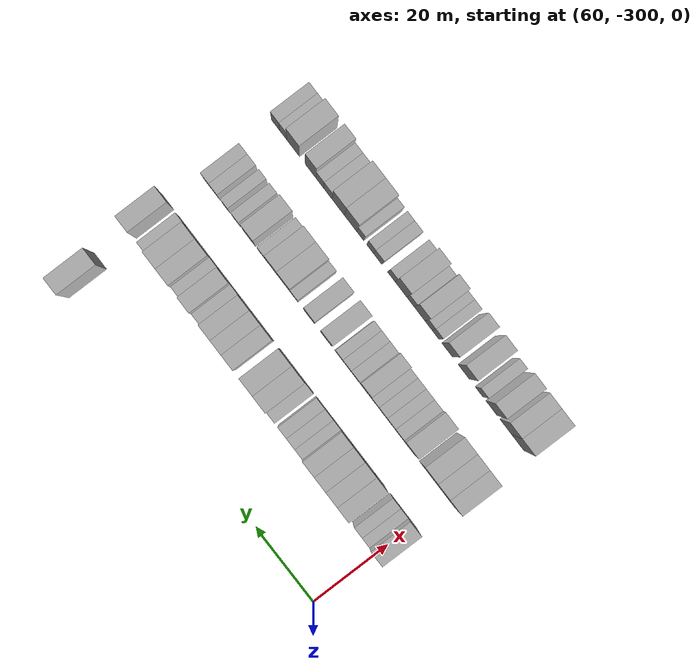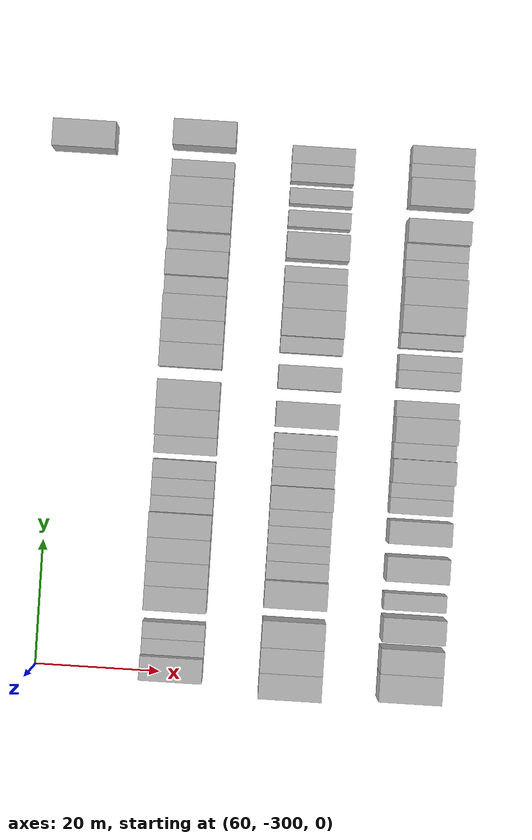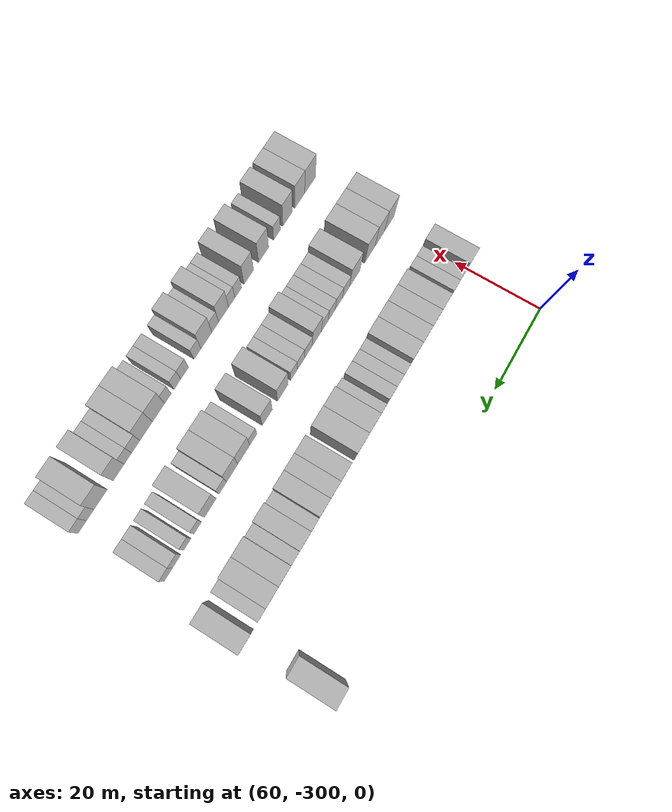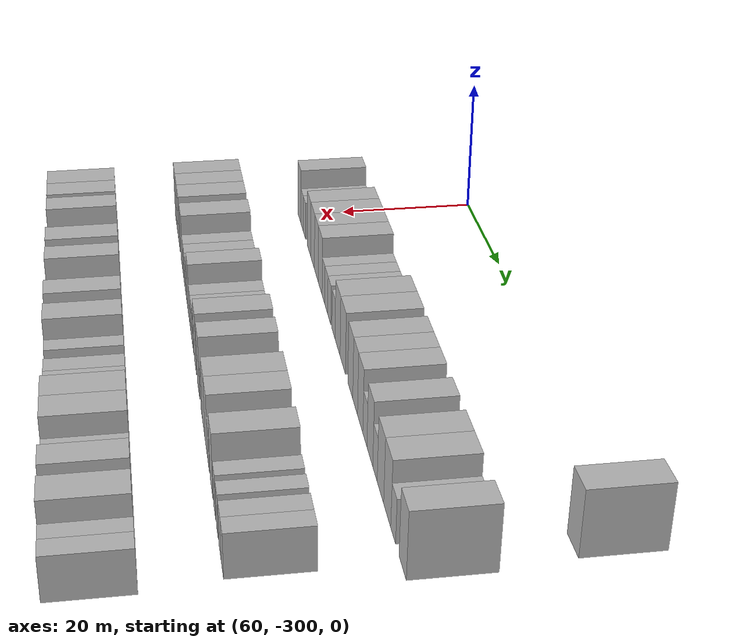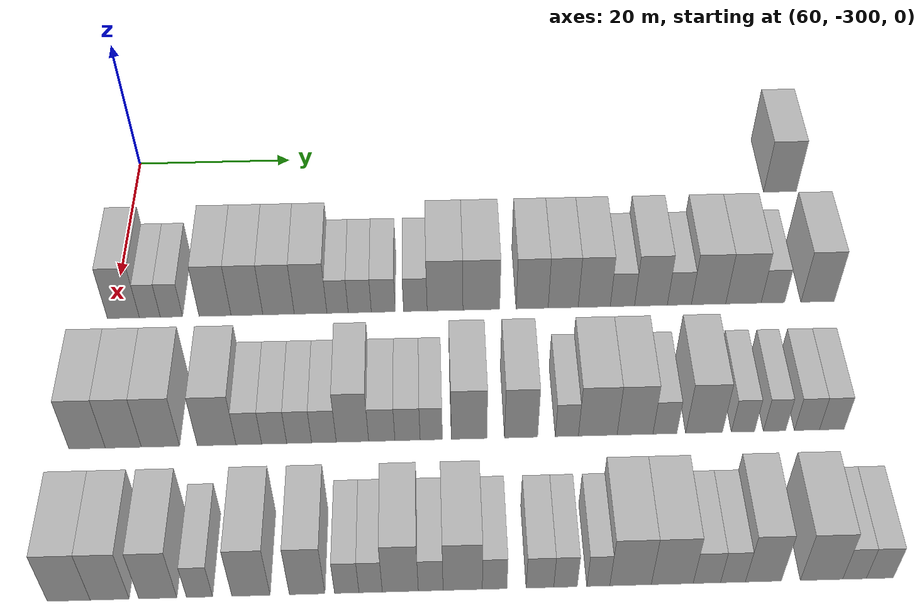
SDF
<sdf version="1.6">
 <world name="default">
  <model name="building_385">
   <static>1</static>
   <pose>63.0000 -215.2289 0 0.000000 0.000000 0.000000</pose>
   <link name="link">
    <pose>0 0 4.50 0 0 0</pose>
    <collision name="collision"><geometry><box><size>10.0000 4.3317 9.0000</size></box></geometry></collision>
    <visual name="visual">
     <cast_shadows>0</cast_shadows>
     <geometry><box><size>10.0000 4.3317 9.0000</size></box></geometry>
     <material>
      <script>
       <uri>model://HANNAS_wall/materials/scripts</uri>
       <uri>model://HANNAS_wall/materials/textures</uri>
       <name>vrc/HANNAS_wall</name>
      </script>
     </material>
    </visual>
   </link>
  </model>
  <model name="building_533">
   <static>1</static>
   <pose>82.0000 -298.7210 0 0.000000 0.000000 0.000000</pose>
   <link name="link">
    <pose>0 0 4.50 0 0 0</pose>
    <collision name="collision"><geometry><box><size>10.0000 3.8678 9.0000</size></box></geometry></collision>
    <visual name="visual">
     <cast_shadows>0</cast_shadows>
     <geometry><box><size>10.0000 3.8678 9.0000</size></box></geometry>
     <material>
      <script>
       <uri>model://HANNAS_wall/materials/scripts</uri>
       <uri>model://HANNAS_wall/materials/textures</uri>
       <name>vrc/HANNAS_wall</name>
      </script>
     </material>
    </visual>
   </link>
  </model>
  <model name="building_534">
   <static>1</static>
   <pose>82.0000 -295.5217 0 0.000000 0.000000 0.000000</pose>
   <link name="link">
    <pose>0 0 3.00 0 0 0</pose>
    <collision name="collision"><geometry><box><size>10.0000 2.5306 6.0000</size></box></geometry></collision>
    <visual name="visual">
     <cast_shadows>0</cast_shadows>
     <geometry><box><size>10.0000 2.5306 6.0000</size></box></geometry>
     <material>
      <script>
       <uri>model://HANNAS_wall/materials/scripts</uri>
       <uri>model://HANNAS_wall/materials/textures</uri>
       <name>vrc/HANNAS_wall</name>
      </script>
     </material>
    </visual>
   </link>
  </model>
  <model name="building_535">
   <static>1</static>
   <pose>82.0000 -292.9117 0 0.000000 0.000000 0.000000</pose>
   <link name="link">
    <pose>0 0 3.00 0 0 0</pose>
    <collision name="collision"><geometry><box><size>10.0000 2.6894 6.0000</size></box></geometry></collision>
    <visual name="visual">
     <cast_shadows>0</cast_shadows>
     <geometry><box><size>10.0000 2.6894 6.0000</size></box></geometry>
     <material>
      <script>
       <uri>model://HANNAS_wall/materials/scripts</uri>
       <uri>model://HANNAS_wall/materials/textures</uri>
       <name>vrc/HANNAS_wall</name>
      </script>
     </material>
    </visual>
   </link>
  </model>
  <model name="building_536">
   <static>1</static>
   <pose>82.0000 -287.6292 0 0.000000 0.000000 0.000000</pose>
   <link name="link">
    <pose>0 0 4.50 0 0 0</pose>
    <collision name="collision"><geometry><box><size>10.0000 3.8757 9.0000</size></box></geometry></collision>
    <visual name="visual">
     <cast_shadows>0</cast_shadows>
     <geometry><box><size>10.0000 3.8757 9.0000</size></box></geometry>
     <material>
      <script>
       <uri>model://HANNAS_wall/materials/scripts</uri>
       <uri>model://HANNAS_wall/materials/textures</uri>
       <name>vrc/HANNAS_wall</name>
      </script>
     </material>
    </visual>
   </link>
  </model>
  <model name="building_537">
   <static>1</static>
   <pose>82.0000 -283.7638 0 0.000000 0.000000 0.000000</pose>
   <link name="link">
    <pose>0 0 4.50 0 0 0</pose>
    <collision name="collision"><geometry><box><size>10.0000 3.8550 9.0000</size></box></geometry></collision>
    <visual name="visual">
     <cast_shadows>0</cast_shadows>
     <geometry><box><size>10.0000 3.8550 9.0000</size></box></geometry>
     <material>
      <script>
       <uri>model://HANNAS_wall/materials/scripts</uri>
       <uri>model://HANNAS_wall/materials/textures</uri>
       <name>vrc/HANNAS_wall</name>
      </script>
     </material>
    </visual>
   </link>
  </model>
  <model name="building_538">
   <static>1</static>
   <pose>82.0000 -279.9281 0 0.000000 0.000000 0.000000</pose>
   <link name="link">
    <pose>0 0 4.50 0 0 0</pose>
    <collision name="collision"><geometry><box><size>10.0000 3.8164 9.0000</size></box></geometry></collision>
    <visual name="visual">
     <cast_shadows>0</cast_shadows>
     <geometry><box><size>10.0000 3.8164 9.0000</size></box></geometry>
     <material>
      <script>
       <uri>model://HANNAS_wall/materials/scripts</uri>
       <uri>model://HANNAS_wall/materials/textures</uri>
       <name>vrc/HANNAS_wall</name>
      </script>
     </material>
    </visual>
   </link>
  </model>
  <model name="building_539">
   <static>1</static>
   <pose>82.0000 -276.0385 0 0.000000 0.000000 0.000000</pose>
   <link name="link">
    <pose>0 0 4.50 0 0 0</pose>
    <collision name="collision"><geometry><box><size>10.0000 3.9629 9.0000</size></box></geometry></collision>
    <visual name="visual">
     <cast_shadows>0</cast_shadows>
     <geometry><box><size>10.0000 3.9629 9.0000</size></box></geometry>
     <material>
      <script>
       <uri>model://HANNAS_wall/materials/scripts</uri>
       <uri>model://HANNAS_wall/materials/textures</uri>
       <name>vrc/HANNAS_wall</name>
      </script>
     </material>
    </visual>
   </link>
  </model>
  <model name="building_540">
   <static>1</static>
   <pose>82.0000 -272.7650 0 0.000000 0.000000 0.000000</pose>
   <link name="link">
    <pose>0 0 3.00 0 0 0</pose>
    <collision name="collision"><geometry><box><size>10.0000 2.5842 6.0000</size></box></geometry></collision>
    <visual name="visual">
     <cast_shadows>0</cast_shadows>
     <geometry><box><size>10.0000 2.5842 6.0000</size></box></geometry>
     <material>
      <script>
       <uri>model://HANNAS_wall/materials/scripts</uri>
       <uri>model://HANNAS_wall/materials/textures</uri>
       <name>vrc/HANNAS_wall</name>
      </script>
     </material>
    </visual>
   </link>
  </model>
  <model name="building_541">
   <static>1</static>
   <pose>82.0000 -270.0626 0 0.000000 0.000000 0.000000</pose>
   <link name="link">
    <pose>0 0 3.00 0 0 0</pose>
    <collision name="collision"><geometry><box><size>10.0000 2.8206 6.0000</size></box></geometry></collision>
    <visual name="visual">
     <cast_shadows>0</cast_shadows>
     <geometry><box><size>10.0000 2.8206 6.0000</size></box></geometry>
     <material>
      <script>
       <uri>model://HANNAS_wall/materials/scripts</uri>
       <uri>model://HANNAS_wall/materials/textures</uri>
       <name>vrc/HANNAS_wall</name>
      </script>
     </material>
    </visual>
   </link>
  </model>
  <model name="building_542">
   <static>1</static>
   <pose>82.0000 -267.1849 0 0.000000 0.000000 0.000000</pose>
   <link name="link">
    <pose>0 0 3.00 0 0 0</pose>
    <collision name="collision"><geometry><box><size>10.0000 2.9347 6.0000</size></box></geometry></collision>
    <visual name="visual">
     <cast_shadows>0</cast_shadows>
     <geometry><box><size>10.0000 2.9347 6.0000</size></box></geometry>
     <material>
      <script>
       <uri>model://HANNAS_wall/materials/scripts</uri>
       <uri>model://HANNAS_wall/materials/textures</uri>
       <name>vrc/HANNAS_wall</name>
      </script>
     </material>
    </visual>
   </link>
  </model>
  <model name="building_543">
   <static>1</static>
   <pose>82.0000 -263.2834 0 0.000000 0.000000 0.000000</pose>
   <link name="link">
    <pose>0 0 3.00 0 0 0</pose>
    <collision name="collision"><geometry><box><size>10.0000 2.8681 6.0000</size></box></geometry></collision>
    <visual name="visual">
     <cast_shadows>0</cast_shadows>
     <geometry><box><size>10.0000 2.8681 6.0000</size></box></geometry>
     <material>
      <script>
       <uri>model://HANNAS_wall/materials/scripts</uri>
       <uri>model://HANNAS_wall/materials/textures</uri>
       <name>vrc/HANNAS_wall</name>
      </script>
     </material>
    </visual>
   </link>
  </model>
  <model name="building_544">
   <static>1</static>
   <pose>82.0000 -259.6710 0 0.000000 0.000000 0.000000</pose>
   <link name="link">
    <pose>0 0 4.50 0 0 0</pose>
    <collision name="collision"><geometry><box><size>10.0000 4.3567 9.0000</size></box></geometry></collision>
    <visual name="visual">
     <cast_shadows>0</cast_shadows>
     <geometry><box><size>10.0000 4.3567 9.0000</size></box></geometry>
     <material>
      <script>
       <uri>model://HANNAS_wall/materials/scripts</uri>
       <uri>model://HANNAS_wall/materials/textures</uri>
       <name>vrc/HANNAS_wall</name>
      </script>
     </material>
    </visual>
   </link>
  </model>
  <model name="building_545">
   <static>1</static>
   <pose>82.0000 -255.2457 0 0.000000 0.000000 0.000000</pose>
   <link name="link">
    <pose>0 0 4.50 0 0 0</pose>
    <collision name="collision"><geometry><box><size>10.0000 4.4939 9.0000</size></box></geometry></collision>
    <visual name="visual">
     <cast_shadows>0</cast_shadows>
     <geometry><box><size>10.0000 4.4939 9.0000</size></box></geometry>
     <material>
      <script>
       <uri>model://HANNAS_wall/materials/scripts</uri>
       <uri>model://HANNAS_wall/materials/textures</uri>
       <name>vrc/HANNAS_wall</name>
      </script>
     </material>
    </visual>
   </link>
  </model>
  <model name="building_546">
   <static>1</static>
   <pose>82.0000 -249.0398 0 0.000000 0.000000 0.000000</pose>
   <link name="link">
    <pose>0 0 4.50 0 0 0</pose>
    <collision name="collision"><geometry><box><size>10.0000 3.9179 9.0000</size></box></geometry></collision>
    <visual name="visual">
     <cast_shadows>0</cast_shadows>
     <geometry><box><size>10.0000 3.9179 9.0000</size></box></geometry>
     <material>
      <script>
       <uri>model://HANNAS_wall/materials/scripts</uri>
       <uri>model://HANNAS_wall/materials/textures</uri>
       <name>vrc/HANNAS_wall</name>
      </script>
     </material>
    </visual>
   </link>
  </model>
  <model name="building_547">
   <static>1</static>
   <pose>82.0000 -245.2432 0 0.000000 0.000000 0.000000</pose>
   <link name="link">
    <pose>0 0 4.50 0 0 0</pose>
    <collision name="collision"><geometry><box><size>10.0000 3.6753 9.0000</size></box></geometry></collision>
    <visual name="visual">
     <cast_shadows>0</cast_shadows>
     <geometry><box><size>10.0000 3.6753 9.0000</size></box></geometry>
     <material>
      <script>
       <uri>model://HANNAS_wall/materials/scripts</uri>
       <uri>model://HANNAS_wall/materials/textures</uri>
       <name>vrc/HANNAS_wall</name>
      </script>
     </material>
    </visual>
   </link>
  </model>
  <model name="building_548">
   <static>1</static>
   <pose>82.0000 -241.4394 0 0.000000 0.000000 0.000000</pose>
   <link name="link">
    <pose>0 0 4.50 0 0 0</pose>
    <collision name="collision"><geometry><box><size>10.0000 3.9323 9.0000</size></box></geometry></collision>
    <visual name="visual">
     <cast_shadows>0</cast_shadows>
     <geometry><box><size>10.0000 3.9323 9.0000</size></box></geometry>
     <material>
      <script>
       <uri>model://HANNAS_wall/materials/scripts</uri>
       <uri>model://HANNAS_wall/materials/textures</uri>
       <name>vrc/HANNAS_wall</name>
      </script>
     </material>
    </visual>
   </link>
  </model>
  <model name="building_549">
   <static>1</static>
   <pose>82.0000 -237.9886 0 0.000000 0.000000 0.000000</pose>
   <link name="link">
    <pose>0 0 3.00 0 0 0</pose>
    <collision name="collision"><geometry><box><size>10.0000 2.9695 6.0000</size></box></geometry></collision>
    <visual name="visual">
     <cast_shadows>0</cast_shadows>
     <geometry><box><size>10.0000 2.9695 6.0000</size></box></geometry>
     <material>
      <script>
       <uri>model://HANNAS_wall/materials/scripts</uri>
       <uri>model://HANNAS_wall/materials/textures</uri>
       <name>vrc/HANNAS_wall</name>
      </script>
     </material>
    </visual>
   </link>
  </model>
  <model name="building_550">
   <static>1</static>
   <pose>82.0000 -234.4882 0 0.000000 0.000000 0.000000</pose>
   <link name="link">
    <pose>0 0 4.50 0 0 0</pose>
    <collision name="collision"><geometry><box><size>10.0000 4.0312 9.0000</size></box></geometry></collision>
    <visual name="visual">
     <cast_shadows>0</cast_shadows>
     <geometry><box><size>10.0000 4.0312 9.0000</size></box></geometry>
     <material>
      <script>
       <uri>model://HANNAS_wall/materials/scripts</uri>
       <uri>model://HANNAS_wall/materials/textures</uri>
       <name>vrc/HANNAS_wall</name>
      </script>
     </material>
    </visual>
   </link>
  </model>
  <model name="building_551">
   <static>1</static>
   <pose>82.0000 -230.9967 0 0.000000 0.000000 0.000000</pose>
   <link name="link">
    <pose>0 0 3.00 0 0 0</pose>
    <collision name="collision"><geometry><box><size>10.0000 2.9518 6.0000</size></box></geometry></collision>
    <visual name="visual">
     <cast_shadows>0</cast_shadows>
     <geometry><box><size>10.0000 2.9518 6.0000</size></box></geometry>
     <material>
      <script>
       <uri>model://HANNAS_wall/materials/scripts</uri>
       <uri>model://HANNAS_wall/materials/textures</uri>
       <name>vrc/HANNAS_wall</name>
      </script>
     </material>
    </visual>
   </link>
  </model>
  <model name="building_552">
   <static>1</static>
   <pose>82.0000 -227.4092 0 0.000000 0.000000 0.000000</pose>
   <link name="link">
    <pose>0 0 4.50 0 0 0</pose>
    <collision name="collision"><geometry><box><size>10.0000 4.2232 9.0000</size></box></geometry></collision>
    <visual name="visual">
     <cast_shadows>0</cast_shadows>
     <geometry><box><size>10.0000 4.2232 9.0000</size></box></geometry>
     <material>
      <script>
       <uri>model://HANNAS_wall/materials/scripts</uri>
       <uri>model://HANNAS_wall/materials/textures</uri>
       <name>vrc/HANNAS_wall</name>
      </script>
     </material>
    </visual>
   </link>
  </model>
  <model name="building_553">
   <static>1</static>
   <pose>82.0000 -223.1181 0 0.000000 0.000000 0.000000</pose>
   <link name="link">
    <pose>0 0 4.50 0 0 0</pose>
    <collision name="collision"><geometry><box><size>10.0000 4.3590 9.0000</size></box></geometry></collision>
    <visual name="visual">
     <cast_shadows>0</cast_shadows>
     <geometry><box><size>10.0000 4.3590 9.0000</size></box></geometry>
     <material>
      <script>
       <uri>model://HANNAS_wall/materials/scripts</uri>
       <uri>model://HANNAS_wall/materials/textures</uri>
       <name>vrc/HANNAS_wall</name>
      </script>
     </material>
    </visual>
   </link>
  </model>
  <model name="building_554">
   <static>1</static>
   <pose>82.0000 -219.4890 0 0.000000 0.000000 0.000000</pose>
   <link name="link">
    <pose>0 0 3.00 0 0 0</pose>
    <collision name="collision"><geometry><box><size>10.0000 2.8993 6.0000</size></box></geometry></collision>
    <visual name="visual">
     <cast_shadows>0</cast_shadows>
     <geometry><box><size>10.0000 2.8993 6.0000</size></box></geometry>
     <material>
      <script>
       <uri>model://HANNAS_wall/materials/scripts</uri>
       <uri>model://HANNAS_wall/materials/textures</uri>
       <name>vrc/HANNAS_wall</name>
      </script>
     </material>
    </visual>
   </link>
  </model>
  <model name="building_555">
   <static>1</static>
   <pose>82.0000 -213.9840 0 0.000000 0.000000 0.000000</pose>
   <link name="link">
    <pose>0 0 4.50 0 0 0</pose>
    <collision name="collision"><geometry><box><size>10.0000 4.1108 9.0000</size></box></geometry></collision>
    <visual name="visual">
     <cast_shadows>0</cast_shadows>
     <geometry><box><size>10.0000 4.1108 9.0000</size></box></geometry>
     <material>
      <script>
       <uri>model://HANNAS_wall/materials/scripts</uri>
       <uri>model://HANNAS_wall/materials/textures</uri>
       <name>vrc/HANNAS_wall</name>
      </script>
     </material>
    </visual>
   </link>
  </model>
  <model name="building_708">
   <static>1</static>
   <pose>101.0000 -300.3260 0 0.000000 0.000000 0.000000</pose>
   <link name="link">
    <pose>0 0 4.50 0 0 0</pose>
    <collision name="collision"><geometry><box><size>10.0000 4.0676 9.0000</size></box></geometry></collision>
    <visual name="visual">
     <cast_shadows>0</cast_shadows>
     <geometry><box><size>10.0000 4.0676 9.0000</size></box></geometry>
     <material>
      <script>
       <uri>model://HANNAS_wall/materials/scripts</uri>
       <uri>model://HANNAS_wall/materials/textures</uri>
       <name>vrc/HANNAS_wall</name>
      </script>
     </material>
    </visual>
   </link>
  </model>
  <model name="building_709">
   <static>1</static>
   <pose>101.0000 -296.2740 0 0.000000 0.000000 0.000000</pose>
   <link name="link">
    <pose>0 0 4.50 0 0 0</pose>
    <collision name="collision"><geometry><box><size>10.0000 4.0365 9.0000</size></box></geometry></collision>
    <visual name="visual">
     <cast_shadows>0</cast_shadows>
     <geometry><box><size>10.0000 4.0365 9.0000</size></box></geometry>
     <material>
      <script>
       <uri>model://HANNAS_wall/materials/scripts</uri>
       <uri>model://HANNAS_wall/materials/textures</uri>
       <name>vrc/HANNAS_wall</name>
      </script>
     </material>
    </visual>
   </link>
  </model>
  <model name="building_710">
   <static>1</static>
   <pose>101.0000 -292.1121 0 0.000000 0.000000 0.000000</pose>
   <link name="link">
    <pose>0 0 4.50 0 0 0</pose>
    <collision name="collision"><geometry><box><size>10.0000 4.2872 9.0000</size></box></geometry></collision>
    <visual name="visual">
     <cast_shadows>0</cast_shadows>
     <geometry><box><size>10.0000 4.2872 9.0000</size></box></geometry>
     <material>
      <script>
       <uri>model://HANNAS_wall/materials/scripts</uri>
       <uri>model://HANNAS_wall/materials/textures</uri>
       <name>vrc/HANNAS_wall</name>
      </script>
     </material>
    </visual>
   </link>
  </model>
  <model name="building_711">
   <static>1</static>
   <pose>101.0000 -285.8024 0 0.000000 0.000000 0.000000</pose>
   <link name="link">
    <pose>0 0 4.50 0 0 0</pose>
    <collision name="collision"><geometry><box><size>10.0000 4.3322 9.0000</size></box></geometry></collision>
    <visual name="visual">
     <cast_shadows>0</cast_shadows>
     <geometry><box><size>10.0000 4.3322 9.0000</size></box></geometry>
     <material>
      <script>
       <uri>model://HANNAS_wall/materials/scripts</uri>
       <uri>model://HANNAS_wall/materials/textures</uri>
       <name>vrc/HANNAS_wall</name>
      </script>
     </material>
    </visual>
   </link>
  </model>
  <model name="building_712">
   <static>1</static>
   <pose>101.0000 -282.1883 0 0.000000 0.000000 0.000000</pose>
   <link name="link">
    <pose>0 0 3.00 0 0 0</pose>
    <collision name="collision"><geometry><box><size>10.0000 2.8961 6.0000</size></box></geometry></collision>
    <visual name="visual">
     <cast_shadows>0</cast_shadows>
     <geometry><box><size>10.0000 2.8961 6.0000</size></box></geometry>
     <material>
      <script>
       <uri>model://HANNAS_wall/materials/scripts</uri>
       <uri>model://HANNAS_wall/materials/textures</uri>
       <name>vrc/HANNAS_wall</name>
      </script>
     </material>
    </visual>
   </link>
  </model>
  <model name="building_713">
   <static>1</static>
   <pose>101.0000 -279.3324 0 0.000000 0.000000 0.000000</pose>
   <link name="link">
    <pose>0 0 3.00 0 0 0</pose>
    <collision name="collision"><geometry><box><size>10.0000 2.8158 6.0000</size></box></geometry></collision>
    <visual name="visual">
     <cast_shadows>0</cast_shadows>
     <geometry><box><size>10.0000 2.8158 6.0000</size></box></geometry>
     <material>
      <script>
       <uri>model://HANNAS_wall/materials/scripts</uri>
       <uri>model://HANNAS_wall/materials/textures</uri>
       <name>vrc/HANNAS_wall</name>
      </script>
     </material>
    </visual>
   </link>
  </model>
  <model name="building_714">
   <static>1</static>
   <pose>101.0000 -276.5211 0 0.000000 0.000000 0.000000</pose>
   <link name="link">
    <pose>0 0 3.00 0 0 0</pose>
    <collision name="collision"><geometry><box><size>10.0000 2.8069 6.0000</size></box></geometry></collision>
    <visual name="visual">
     <cast_shadows>0</cast_shadows>
     <geometry><box><size>10.0000 2.8069 6.0000</size></box></geometry>
     <material>
      <script>
       <uri>model://HANNAS_wall/materials/scripts</uri>
       <uri>model://HANNAS_wall/materials/textures</uri>
       <name>vrc/HANNAS_wall</name>
      </script>
     </material>
    </visual>
   </link>
  </model>
  <model name="building_715">
   <static>1</static>
   <pose>101.0000 -273.7313 0 0.000000 0.000000 0.000000</pose>
   <link name="link">
    <pose>0 0 3.00 0 0 0</pose>
    <collision name="collision"><geometry><box><size>10.0000 2.7727 6.0000</size></box></geometry></collision>
    <visual name="visual">
     <cast_shadows>0</cast_shadows>
     <geometry><box><size>10.0000 2.7727 6.0000</size></box></geometry>
     <material>
      <script>
       <uri>model://HANNAS_wall/materials/scripts</uri>
       <uri>model://HANNAS_wall/materials/textures</uri>
       <name>vrc/HANNAS_wall</name>
      </script>
     </material>
    </visual>
   </link>
  </model>
  <model name="building_716">
   <static>1</static>
   <pose>101.0000 -270.5183 0 0.000000 0.000000 0.000000</pose>
   <link name="link">
    <pose>0 0 4.50 0 0 0</pose>
    <collision name="collision"><geometry><box><size>10.0000 3.6534 9.0000</size></box></geometry></collision>
    <visual name="visual">
     <cast_shadows>0</cast_shadows>
     <geometry><box><size>10.0000 3.6534 9.0000</size></box></geometry>
     <material>
      <script>
       <uri>model://HANNAS_wall/materials/scripts</uri>
       <uri>model://HANNAS_wall/materials/textures</uri>
       <name>vrc/HANNAS_wall</name>
      </script>
     </material>
    </visual>
   </link>
  </model>
  <model name="building_717">
   <static>1</static>
   <pose>101.0000 -267.2104 0 0.000000 0.000000 0.000000</pose>
   <link name="link">
    <pose>0 0 3.00 0 0 0</pose>
    <collision name="collision"><geometry><box><size>10.0000 2.9623 6.0000</size></box></geometry></collision>
    <visual name="visual">
     <cast_shadows>0</cast_shadows>
     <geometry><box><size>10.0000 2.9623 6.0000</size></box></geometry>
     <material>
      <script>
       <uri>model://HANNAS_wall/materials/scripts</uri>
       <uri>model://HANNAS_wall/materials/textures</uri>
       <name>vrc/HANNAS_wall</name>
      </script>
     </material>
    </visual>
   </link>
  </model>
  <model name="building_718">
   <static>1</static>
   <pose>101.0000 -264.3035 0 0.000000 0.000000 0.000000</pose>
   <link name="link">
    <pose>0 0 3.00 0 0 0</pose>
    <collision name="collision"><geometry><box><size>10.0000 2.8514 6.0000</size></box></geometry></collision>
    <visual name="visual">
     <cast_shadows>0</cast_shadows>
     <geometry><box><size>10.0000 2.8514 6.0000</size></box></geometry>
     <material>
      <script>
       <uri>model://HANNAS_wall/materials/scripts</uri>
       <uri>model://HANNAS_wall/materials/textures</uri>
       <name>vrc/HANNAS_wall</name>
      </script>
     </material>
    </visual>
   </link>
  </model>
  <model name="building_719">
   <static>1</static>
   <pose>101.0000 -261.6172 0 0.000000 0.000000 0.000000</pose>
   <link name="link">
    <pose>0 0 3.00 0 0 0</pose>
    <collision name="collision"><geometry><box><size>10.0000 2.5212 6.0000</size></box></geometry></collision>
    <visual name="visual">
     <cast_shadows>0</cast_shadows>
     <geometry><box><size>10.0000 2.5212 6.0000</size></box></geometry>
     <material>
      <script>
       <uri>model://HANNAS_wall/materials/scripts</uri>
       <uri>model://HANNAS_wall/materials/textures</uri>
       <name>vrc/HANNAS_wall</name>
      </script>
     </material>
    </visual>
   </link>
  </model>
  <model name="building_720">
   <static>1</static>
   <pose>101.0000 -257.3461 0 0.000000 0.000000 0.000000</pose>
   <link name="link">
    <pose>0 0 4.50 0 0 0</pose>
    <collision name="collision"><geometry><box><size>10.0000 4.0210 9.0000</size></box></geometry></collision>
    <visual name="visual">
     <cast_shadows>0</cast_shadows>
     <geometry><box><size>10.0000 4.0210 9.0000</size></box></geometry>
     <material>
      <script>
       <uri>model://HANNAS_wall/materials/scripts</uri>
       <uri>model://HANNAS_wall/materials/textures</uri>
       <name>vrc/HANNAS_wall</name>
      </script>
     </material>
    </visual>
   </link>
  </model>
  <model name="building_721">
   <static>1</static>
   <pose>101.0000 -251.4576 0 0.000000 0.000000 0.000000</pose>
   <link name="link">
    <pose>0 0 4.50 0 0 0</pose>
    <collision name="collision"><geometry><box><size>10.0000 3.7560 9.0000</size></box></geometry></collision>
    <visual name="visual">
     <cast_shadows>0</cast_shadows>
     <geometry><box><size>10.0000 3.7560 9.0000</size></box></geometry>
     <material>
      <script>
       <uri>model://HANNAS_wall/materials/scripts</uri>
       <uri>model://HANNAS_wall/materials/textures</uri>
       <name>vrc/HANNAS_wall</name>
      </script>
     </material>
    </visual>
   </link>
  </model>
  <model name="building_722">
   <static>1</static>
   <pose>101.0000 -246.2691 0 0.000000 0.000000 0.000000</pose>
   <link name="link">
    <pose>0 0 3.00 0 0 0</pose>
    <collision name="collision"><geometry><box><size>10.0000 2.6211 6.0000</size></box></geometry></collision>
    <visual name="visual">
     <cast_shadows>0</cast_shadows>
     <geometry><box><size>10.0000 2.6211 6.0000</size></box></geometry>
     <material>
      <script>
       <uri>model://HANNAS_wall/materials/scripts</uri>
       <uri>model://HANNAS_wall/materials/textures</uri>
       <name>vrc/HANNAS_wall</name>
      </script>
     </material>
    </visual>
   </link>
  </model>
  <model name="building_723">
   <static>1</static>
   <pose>101.0000 -242.7640 0 0.000000 0.000000 0.000000</pose>
   <link name="link">
    <pose>0 0 4.50 0 0 0</pose>
    <collision name="collision"><geometry><box><size>10.0000 4.3892 9.0000</size></box></geometry></collision>
    <visual name="visual">
     <cast_shadows>0</cast_shadows>
     <geometry><box><size>10.0000 4.3892 9.0000</size></box></geometry>
     <material>
      <script>
       <uri>model://HANNAS_wall/materials/scripts</uri>
       <uri>model://HANNAS_wall/materials/textures</uri>
       <name>vrc/HANNAS_wall</name>
      </script>
     </material>
    </visual>
   </link>
  </model>
  <model name="building_724">
   <static>1</static>
   <pose>101.0000 -238.5288 0 0.000000 0.000000 0.000000</pose>
   <link name="link">
    <pose>0 0 4.50 0 0 0</pose>
    <collision name="collision"><geometry><box><size>10.0000 4.0811 9.0000</size></box></geometry></collision>
    <visual name="visual">
     <cast_shadows>0</cast_shadows>
     <geometry><box><size>10.0000 4.0811 9.0000</size></box></geometry>
     <material>
      <script>
       <uri>model://HANNAS_wall/materials/scripts</uri>
       <uri>model://HANNAS_wall/materials/textures</uri>
       <name>vrc/HANNAS_wall</name>
      </script>
     </material>
    </visual>
   </link>
  </model>
  <model name="building_725">
   <static>1</static>
   <pose>101.0000 -235.1249 0 0.000000 0.000000 0.000000</pose>
   <link name="link">
    <pose>0 0 3.00 0 0 0</pose>
    <collision name="collision"><geometry><box><size>10.0000 2.7266 6.0000</size></box></geometry></collision>
    <visual name="visual">
     <cast_shadows>0</cast_shadows>
     <geometry><box><size>10.0000 2.7266 6.0000</size></box></geometry>
     <material>
      <script>
       <uri>model://HANNAS_wall/materials/scripts</uri>
       <uri>model://HANNAS_wall/materials/textures</uri>
       <name>vrc/HANNAS_wall</name>
      </script>
     </material>
    </visual>
   </link>
  </model>
  <model name="building_726">
   <static>1</static>
   <pose>101.0000 -230.6602 0 0.000000 0.000000 0.000000</pose>
   <link name="link">
    <pose>0 0 4.50 0 0 0</pose>
    <collision name="collision"><geometry><box><size>10.0000 4.2029 9.0000</size></box></geometry></collision>
    <visual name="visual">
     <cast_shadows>0</cast_shadows>
     <geometry><box><size>10.0000 4.2029 9.0000</size></box></geometry>
     <material>
      <script>
       <uri>model://HANNAS_wall/materials/scripts</uri>
       <uri>model://HANNAS_wall/materials/textures</uri>
       <name>vrc/HANNAS_wall</name>
      </script>
     </material>
    </visual>
   </link>
  </model>
  <model name="building_727">
   <static>1</static>
   <pose>101.0000 -226.2295 0 0.000000 0.000000 0.000000</pose>
   <link name="link">
    <pose>0 0 3.00 0 0 0</pose>
    <collision name="collision"><geometry><box><size>10.0000 2.6584 6.0000</size></box></geometry></collision>
    <visual name="visual">
     <cast_shadows>0</cast_shadows>
     <geometry><box><size>10.0000 2.6584 6.0000</size></box></geometry>
     <material>
      <script>
       <uri>model://HANNAS_wall/materials/scripts</uri>
       <uri>model://HANNAS_wall/materials/textures</uri>
       <name>vrc/HANNAS_wall</name>
      </script>
     </material>
    </visual>
   </link>
  </model>
  <model name="building_728">
   <static>1</static>
   <pose>101.0000 -222.6300 0 0.000000 0.000000 0.000000</pose>
   <link name="link">
    <pose>0 0 3.00 0 0 0</pose>
    <collision name="collision"><geometry><box><size>10.0000 2.5407 6.0000</size></box></geometry></collision>
    <visual name="visual">
     <cast_shadows>0</cast_shadows>
     <geometry><box><size>10.0000 2.5407 6.0000</size></box></geometry>
     <material>
      <script>
       <uri>model://HANNAS_wall/materials/scripts</uri>
       <uri>model://HANNAS_wall/materials/textures</uri>
       <name>vrc/HANNAS_wall</name>
      </script>
     </material>
    </visual>
   </link>
  </model>
  <model name="building_729">
   <static>1</static>
   <pose>101.0000 -218.9224 0 0.000000 0.000000 0.000000</pose>
   <link name="link">
    <pose>0 0 3.00 0 0 0</pose>
    <collision name="collision"><geometry><box><size>10.0000 2.8745 6.0000</size></box></geometry></collision>
    <visual name="visual">
     <cast_shadows>0</cast_shadows>
     <geometry><box><size>10.0000 2.8745 6.0000</size></box></geometry>
     <material>
      <script>
       <uri>model://HANNAS_wall/materials/scripts</uri>
       <uri>model://HANNAS_wall/materials/textures</uri>
       <name>vrc/HANNAS_wall</name>
      </script>
     </material>
    </visual>
   </link>
  </model>
  <model name="building_730">
   <static>1</static>
   <pose>101.0000 -216.0753 0 0.000000 0.000000 0.000000</pose>
   <link name="link">
    <pose>0 0 3.00 0 0 0</pose>
    <collision name="collision"><geometry><box><size>10.0000 2.8198 6.0000</size></box></geometry></collision>
    <visual name="visual">
     <cast_shadows>0</cast_shadows>
     <geometry><box><size>10.0000 2.8198 6.0000</size></box></geometry>
     <material>
      <script>
       <uri>model://HANNAS_wall/materials/scripts</uri>
       <uri>model://HANNAS_wall/materials/textures</uri>
       <name>vrc/HANNAS_wall</name>
      </script>
     </material>
    </visual>
   </link>
  </model>
  <model name="building_891">
   <static>1</static>
   <pose>120.0000 -299.4473 0 0.000000 0.000000 0.000000</pose>
   <link name="link">
    <pose>0 0 4.50 0 0 0</pose>
    <collision name="collision"><geometry><box><size>10.0000 4.4190 9.0000</size></box></geometry></collision>
    <visual name="visual">
     <cast_shadows>0</cast_shadows>
     <geometry><box><size>10.0000 4.4190 9.0000</size></box></geometry>
     <material>
      <script>
       <uri>model://HANNAS_wall/materials/scripts</uri>
       <uri>model://HANNAS_wall/materials/textures</uri>
       <name>vrc/HANNAS_wall</name>
      </script>
     </material>
    </visual>
   </link>
  </model>
  <model name="building_892">
   <static>1</static>
   <pose>120.0000 -295.2262 0 0.000000 0.000000 0.000000</pose>
   <link name="link">
    <pose>0 0 4.50 0 0 0</pose>
    <collision name="collision"><geometry><box><size>10.0000 4.0231 9.0000</size></box></geometry></collision>
    <visual name="visual">
     <cast_shadows>0</cast_shadows>
     <geometry><box><size>10.0000 4.0231 9.0000</size></box></geometry>
     <material>
      <script>
       <uri>model://HANNAS_wall/materials/scripts</uri>
       <uri>model://HANNAS_wall/materials/textures</uri>
       <name>vrc/HANNAS_wall</name>
      </script>
     </material>
    </visual>
   </link>
  </model>
  <model name="building_893">
   <static>1</static>
   <pose>120.0000 -290.2506 0 0.000000 0.000000 0.000000</pose>
   <link name="link">
    <pose>0 0 4.50 0 0 0</pose>
    <collision name="collision"><geometry><box><size>10.0000 3.9282 9.0000</size></box></geometry></collision>
    <visual name="visual">
     <cast_shadows>0</cast_shadows>
     <geometry><box><size>10.0000 3.9282 9.0000</size></box></geometry>
     <material>
      <script>
       <uri>model://HANNAS_wall/materials/scripts</uri>
       <uri>model://HANNAS_wall/materials/textures</uri>
       <name>vrc/HANNAS_wall</name>
      </script>
     </material>
    </visual>
   </link>
  </model>
  <model name="building_894">
   <static>1</static>
   <pose>120.0000 -285.9377 0 0.000000 0.000000 0.000000</pose>
   <link name="link">
    <pose>0 0 3.00 0 0 0</pose>
    <collision name="collision"><geometry><box><size>10.0000 2.6975 6.0000</size></box></geometry></collision>
    <visual name="visual">
     <cast_shadows>0</cast_shadows>
     <geometry><box><size>10.0000 2.6975 6.0000</size></box></geometry>
     <material>
      <script>
       <uri>model://HANNAS_wall/materials/scripts</uri>
       <uri>model://HANNAS_wall/materials/textures</uri>
       <name>vrc/HANNAS_wall</name>
      </script>
     </material>
    </visual>
   </link>
  </model>
  <model name="building_895">
   <static>1</static>
   <pose>120.0000 -280.6111 0 0.000000 0.000000 0.000000</pose>
   <link name="link">
    <pose>0 0 4.50 0 0 0</pose>
    <collision name="collision"><geometry><box><size>10.0000 3.9556 9.0000</size></box></geometry></collision>
    <visual name="visual">
     <cast_shadows>0</cast_shadows>
     <geometry><box><size>10.0000 3.9556 9.0000</size></box></geometry>
     <material>
      <script>
       <uri>model://HANNAS_wall/materials/scripts</uri>
       <uri>model://HANNAS_wall/materials/textures</uri>
       <name>vrc/HANNAS_wall</name>
      </script>
     </material>
    </visual>
   </link>
  </model>
  <model name="building_896">
   <static>1</static>
   <pose>120.0000 -274.7899 0 0.000000 0.000000 0.000000</pose>
   <link name="link">
    <pose>0 0 4.50 0 0 0</pose>
    <collision name="collision"><geometry><box><size>10.0000 3.6868 9.0000</size></box></geometry></collision>
    <visual name="visual">
     <cast_shadows>0</cast_shadows>
     <geometry><box><size>10.0000 3.6868 9.0000</size></box></geometry>
     <material>
      <script>
       <uri>model://HANNAS_wall/materials/scripts</uri>
       <uri>model://HANNAS_wall/materials/textures</uri>
       <name>vrc/HANNAS_wall</name>
      </script>
     </material>
    </visual>
   </link>
  </model>
  <model name="building_897">
   <static>1</static>
   <pose>120.0000 -270.6773 0 0.000000 0.000000 0.000000</pose>
   <link name="link">
    <pose>0 0 3.00 0 0 0</pose>
    <collision name="collision"><geometry><box><size>10.0000 2.5386 6.0000</size></box></geometry></collision>
    <visual name="visual">
     <cast_shadows>0</cast_shadows>
     <geometry><box><size>10.0000 2.5386 6.0000</size></box></geometry>
     <material>
      <script>
       <uri>model://HANNAS_wall/materials/scripts</uri>
       <uri>model://HANNAS_wall/materials/textures</uri>
       <name>vrc/HANNAS_wall</name>
      </script>
     </material>
    </visual>
   </link>
  </model>
  <model name="building_898">
   <static>1</static>
   <pose>120.0000 -268.1975 0 0.000000 0.000000 0.000000</pose>
   <link name="link">
    <pose>0 0 3.00 0 0 0</pose>
    <collision name="collision"><geometry><box><size>10.0000 2.4209 6.0000</size></box></geometry></collision>
    <visual name="visual">
     <cast_shadows>0</cast_shadows>
     <geometry><box><size>10.0000 2.4209 6.0000</size></box></geometry>
     <material>
      <script>
       <uri>model://HANNAS_wall/materials/scripts</uri>
       <uri>model://HANNAS_wall/materials/textures</uri>
       <name>vrc/HANNAS_wall</name>
      </script>
     </material>
    </visual>
   </link>
  </model>
  <model name="building_899">
   <static>1</static>
   <pose>120.0000 -265.1131 0 0.000000 0.000000 0.000000</pose>
   <link name="link">
    <pose>0 0 4.50 0 0 0</pose>
    <collision name="collision"><geometry><box><size>10.0000 3.7478 9.0000</size></box></geometry></collision>
    <visual name="visual">
     <cast_shadows>0</cast_shadows>
     <geometry><box><size>10.0000 3.7478 9.0000</size></box></geometry>
     <material>
      <script>
       <uri>model://HANNAS_wall/materials/scripts</uri>
       <uri>model://HANNAS_wall/materials/textures</uri>
       <name>vrc/HANNAS_wall</name>
      </script>
     </material>
    </visual>
   </link>
  </model>
  <model name="building_900">
   <static>1</static>
   <pose>120.0000 -261.9506 0 0.000000 0.000000 0.000000</pose>
   <link name="link">
    <pose>0 0 3.00 0 0 0</pose>
    <collision name="collision"><geometry><box><size>10.0000 2.5772 6.0000</size></box></geometry></collision>
    <visual name="visual">
     <cast_shadows>0</cast_shadows>
     <geometry><box><size>10.0000 2.5772 6.0000</size></box></geometry>
     <material>
      <script>
       <uri>model://HANNAS_wall/materials/scripts</uri>
       <uri>model://HANNAS_wall/materials/textures</uri>
       <name>vrc/HANNAS_wall</name>
      </script>
     </material>
    </visual>
   </link>
  </model>
  <model name="building_901">
   <static>1</static>
   <pose>120.0000 -258.6200 0 0.000000 0.000000 0.000000</pose>
   <link name="link">
    <pose>0 0 4.50 0 0 0</pose>
    <collision name="collision"><geometry><box><size>10.0000 4.0840 9.0000</size></box></geometry></collision>
    <visual name="visual">
     <cast_shadows>0</cast_shadows>
     <geometry><box><size>10.0000 4.0840 9.0000</size></box></geometry>
     <material>
      <script>
       <uri>model://HANNAS_wall/materials/scripts</uri>
       <uri>model://HANNAS_wall/materials/textures</uri>
       <name>vrc/HANNAS_wall</name>
      </script>
     </material>
    </visual>
   </link>
  </model>
  <model name="building_902">
   <static>1</static>
   <pose>120.0000 -255.2914 0 0.000000 0.000000 0.000000</pose>
   <link name="link">
    <pose>0 0 3.00 0 0 0</pose>
    <collision name="collision"><geometry><box><size>10.0000 2.5733 6.0000</size></box></geometry></collision>
    <visual name="visual">
     <cast_shadows>0</cast_shadows>
     <geometry><box><size>10.0000 2.5733 6.0000</size></box></geometry>
     <material>
      <script>
       <uri>model://HANNAS_wall/materials/scripts</uri>
       <uri>model://HANNAS_wall/materials/textures</uri>
       <name>vrc/HANNAS_wall</name>
      </script>
     </material>
    </visual>
   </link>
  </model>
  <model name="building_903">
   <static>1</static>
   <pose>120.0000 -250.5590 0 0.000000 0.000000 0.000000</pose>
   <link name="link">
    <pose>0 0 3.00 0 0 0</pose>
    <collision name="collision"><geometry><box><size>10.0000 2.8915 6.0000</size></box></geometry></collision>
    <visual name="visual">
     <cast_shadows>0</cast_shadows>
     <geometry><box><size>10.0000 2.8915 6.0000</size></box></geometry>
     <material>
      <script>
       <uri>model://HANNAS_wall/materials/scripts</uri>
       <uri>model://HANNAS_wall/materials/textures</uri>
       <name>vrc/HANNAS_wall</name>
      </script>
     </material>
    </visual>
   </link>
  </model>
  <model name="building_904">
   <static>1</static>
   <pose>120.0000 -247.8862 0 0.000000 0.000000 0.000000</pose>
   <link name="link">
    <pose>0 0 3.00 0 0 0</pose>
    <collision name="collision"><geometry><box><size>10.0000 2.4541 6.0000</size></box></geometry></collision>
    <visual name="visual">
     <cast_shadows>0</cast_shadows>
     <geometry><box><size>10.0000 2.4541 6.0000</size></box></geometry>
     <material>
      <script>
       <uri>model://HANNAS_wall/materials/scripts</uri>
       <uri>model://HANNAS_wall/materials/textures</uri>
       <name>vrc/HANNAS_wall</name>
      </script>
     </material>
    </visual>
   </link>
  </model>
  <model name="building_905">
   <static>1</static>
   <pose>120.0000 -244.4586 0 0.000000 0.000000 0.000000</pose>
   <link name="link">
    <pose>0 0 3.00 0 0 0</pose>
    <collision name="collision"><geometry><box><size>10.0000 2.4012 6.0000</size></box></geometry></collision>
    <visual name="visual">
     <cast_shadows>0</cast_shadows>
     <geometry><box><size>10.0000 2.4012 6.0000</size></box></geometry>
     <material>
      <script>
       <uri>model://HANNAS_wall/materials/scripts</uri>
       <uri>model://HANNAS_wall/materials/textures</uri>
       <name>vrc/HANNAS_wall</name>
      </script>
     </material>
    </visual>
   </link>
  </model>
  <model name="building_906">
   <static>1</static>
   <pose>120.0000 -241.0801 0 0.000000 0.000000 0.000000</pose>
   <link name="link">
    <pose>0 0 4.50 0 0 0</pose>
    <collision name="collision"><geometry><box><size>10.0000 4.3559 9.0000</size></box></geometry></collision>
    <visual name="visual">
     <cast_shadows>0</cast_shadows>
     <geometry><box><size>10.0000 4.3559 9.0000</size></box></geometry>
     <material>
      <script>
       <uri>model://HANNAS_wall/materials/scripts</uri>
       <uri>model://HANNAS_wall/materials/textures</uri>
       <name>vrc/HANNAS_wall</name>
      </script>
     </material>
    </visual>
   </link>
  </model>
  <model name="building_907">
   <static>1</static>
   <pose>120.0000 -236.7057 0 0.000000 0.000000 0.000000</pose>
   <link name="link">
    <pose>0 0 4.50 0 0 0</pose>
    <collision name="collision"><geometry><box><size>10.0000 4.3929 9.0000</size></box></geometry></collision>
    <visual name="visual">
     <cast_shadows>0</cast_shadows>
     <geometry><box><size>10.0000 4.3929 9.0000</size></box></geometry>
     <material>
      <script>
       <uri>model://HANNAS_wall/materials/scripts</uri>
       <uri>model://HANNAS_wall/materials/textures</uri>
       <name>vrc/HANNAS_wall</name>
      </script>
     </material>
    </visual>
   </link>
  </model>
  <model name="building_908">
   <static>1</static>
   <pose>120.0000 -233.0761 0 0.000000 0.000000 0.000000</pose>
   <link name="link">
    <pose>0 0 3.00 0 0 0</pose>
    <collision name="collision"><geometry><box><size>10.0000 2.8663 6.0000</size></box></geometry></collision>
    <visual name="visual">
     <cast_shadows>0</cast_shadows>
     <geometry><box><size>10.0000 2.8663 6.0000</size></box></geometry>
     <material>
      <script>
       <uri>model://HANNAS_wall/materials/scripts</uri>
       <uri>model://HANNAS_wall/materials/textures</uri>
       <name>vrc/HANNAS_wall</name>
      </script>
     </material>
    </visual>
   </link>
  </model>
  <model name="building_909">
   <static>1</static>
   <pose>120.0000 -230.3357 0 0.000000 0.000000 0.000000</pose>
   <link name="link">
    <pose>0 0 3.00 0 0 0</pose>
    <collision name="collision"><geometry><box><size>10.0000 2.6144 6.0000</size></box></geometry></collision>
    <visual name="visual">
     <cast_shadows>0</cast_shadows>
     <geometry><box><size>10.0000 2.6144 6.0000</size></box></geometry>
     <material>
      <script>
       <uri>model://HANNAS_wall/materials/scripts</uri>
       <uri>model://HANNAS_wall/materials/textures</uri>
       <name>vrc/HANNAS_wall</name>
      </script>
     </material>
    </visual>
   </link>
  </model>
  <model name="building_910">
   <static>1</static>
   <pose>120.0000 -227.1346 0 0.000000 0.000000 0.000000</pose>
   <link name="link">
    <pose>0 0 4.50 0 0 0</pose>
    <collision name="collision"><geometry><box><size>10.0000 3.7878 9.0000</size></box></geometry></collision>
    <visual name="visual">
     <cast_shadows>0</cast_shadows>
     <geometry><box><size>10.0000 3.7878 9.0000</size></box></geometry>
     <material>
      <script>
       <uri>model://HANNAS_wall/materials/scripts</uri>
       <uri>model://HANNAS_wall/materials/textures</uri>
       <name>vrc/HANNAS_wall</name>
      </script>
     </material>
    </visual>
   </link>
  </model>
  <model name="building_911">
   <static>1</static>
   <pose>120.0000 -221.0150 0 0.000000 0.000000 0.000000</pose>
   <link name="link">
    <pose>0 0 4.50 0 0 0</pose>
    <collision name="collision"><geometry><box><size>10.0000 4.4514 9.0000</size></box></geometry></collision>
    <visual name="visual">
     <cast_shadows>0</cast_shadows>
     <geometry><box><size>10.0000 4.4514 9.0000</size></box></geometry>
     <material>
      <script>
       <uri>model://HANNAS_wall/materials/scripts</uri>
       <uri>model://HANNAS_wall/materials/textures</uri>
       <name>vrc/HANNAS_wall</name>
      </script>
     </material>
    </visual>
   </link>
  </model>
  <model name="building_912">
   <static>1</static>
   <pose>120.0000 -217.5437 0 0.000000 0.000000 0.000000</pose>
   <link name="link">
    <pose>0 0 3.00 0 0 0</pose>
    <collision name="collision"><geometry><box><size>10.0000 2.4911 6.0000</size></box></geometry></collision>
    <visual name="visual">
     <cast_shadows>0</cast_shadows>
     <geometry><box><size>10.0000 2.4911 6.0000</size></box></geometry>
     <material>
      <script>
       <uri>model://HANNAS_wall/materials/scripts</uri>
       <uri>model://HANNAS_wall/materials/textures</uri>
       <name>vrc/HANNAS_wall</name>
      </script>
     </material>
    </visual>
   </link>
  </model>
  <model name="building_913">
   <static>1</static>
   <pose>120.0000 -214.8699 0 0.000000 0.000000 0.000000</pose>
   <link name="link">
    <pose>0 0 3.00 0 0 0</pose>
    <collision name="collision"><geometry><box><size>10.0000 2.8566 6.0000</size></box></geometry></collision>
    <visual name="visual">
     <cast_shadows>0</cast_shadows>
     <geometry><box><size>10.0000 2.8566 6.0000</size></box></geometry>
     <material>
      <script>
       <uri>model://HANNAS_wall/materials/scripts</uri>
       <uri>model://HANNAS_wall/materials/textures</uri>
       <name>vrc/HANNAS_wall</name>
      </script>
     </material>
    </visual>
   </link>
  </model>
 </world>
</sdf>
